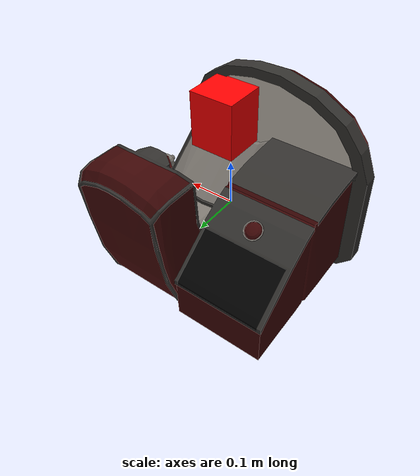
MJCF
<mujoco model="coffee_machine_18">
  <compiler autolimits="true" boundmass="0.01" angle="radian"/>
  <default>
    <default class="/">
      <default class="__VISUAL_MJT__">
        <geom contype="0" conaffinity="0" group="0"/>
      </default>
      <default class="__STRUCTURAL_MJT__">
        <geom contype="8" conaffinity="15" group="4" friction="0.90000000000000002 0.90000000000000002 0.001" solref="0.025000000000000001 1" solimp="0.998 0.998 0.001"/>
      </default>
      <default class="__DYNAMIC_MJT__">
        <geom contype="1" conaffinity="15" group="4" friction="0.90000000000000002 0.90000000000000002 0.001" solref="0.025000000000000001 1" solimp="0.998 0.998 0.001"/>
      </default>
    </default>
  </default>
  <asset>
    <material name="material_coffee_machine_backup_mat" class="/" specular="0.5" shininess="0.5" rgba="0.5 0.5 0.5 1"/>
    <material name="material_Coffee_Machine_Readout_Mat_Off" class="/" specular="0.5" shininess="0.5" rgba="0 0 0 1"/>
    <texture name="Coffee_Machine_Decal_Mat" type="2d" file="Coffee_Machine_Decal_AlbedoTransparency.png"/>
    <material name="material_Coffee_Machine_Decal_Mat" class="/" texture="Coffee_Machine_Decal_Mat" specular="0.5" shininess="0.5" rgba="1 1 1 1"/>
    <texture name="Coffee_Machine_Metal_Mat" type="2d" file="MetalBumpy_AlbedoTransparency.png"/>
    <material name="material_Coffee_Machine_Metal_Mat" class="/" texture="Coffee_Machine_Metal_Mat" specular="0.5" shininess="0.5" rgba="0.66176469999999998 0.66176469999999998 0.66176469999999998 1"/>
    <texture name="Coffee_Machine_Secondary3_Color_Mat" type="2d" file="BrushedIron_AlbedoTransparency.png"/>
    <material name="material_Coffee_Machine_Secondary3_Color_Mat" class="/" texture="Coffee_Machine_Secondary3_Color_Mat" specular="0.5" shininess="0.5" rgba="0.2573529 0.2573529 0.2573529 1"/>
    <texture name="Coffee_Machine_Primary3_Color_Mat" type="2d" file="BumpyPlastic_Albedo.png"/>
    <material name="material_Coffee_Machine_Primary3_Color_Mat" class="/" texture="Coffee_Machine_Primary3_Color_Mat" specular="0.5" shininess="0.5" rgba="0.31617650000000003 0.030222740000000001 0.030222740000000001 1"/>
    <mesh name="coffee_machine_18_coffee_machine_28_0" class="/" file="coffee_machine_18_coffee_machine_28/coffee_machine_18_coffee_machine_28_0.obj" scale="1 1 1"/>
    <mesh name="coffee_machine_18_coffee_machine_28_1" class="/" file="coffee_machine_18_coffee_machine_28/coffee_machine_18_coffee_machine_28_1.obj" scale="1 1 1"/>
    <mesh name="coffee_machine_18_coffee_machine_28_2" class="/" file="coffee_machine_18_coffee_machine_28/coffee_machine_18_coffee_machine_28_2.obj" scale="1 1 1"/>
    <mesh name="coffee_machine_18_coffee_machine_28_3" class="/" file="coffee_machine_18_coffee_machine_28/coffee_machine_18_coffee_machine_28_3.obj" scale="1 1 1"/>
    <mesh name="coffee_machine_18_coffee_machine_28_4" class="/" file="coffee_machine_18_coffee_machine_28/coffee_machine_18_coffee_machine_28_4.obj" scale="1 1 1"/>
    <mesh name="coffee_machine_18_coffee_machine_28_5" class="/" file="coffee_machine_18_coffee_machine_28/coffee_machine_18_coffee_machine_28_5.obj" scale="1 1 1"/>
  </asset>
  <worldbody>
    <body name="coffee_machine_18">
      <joint name="coffee_machine_18_free" class="/" type="free" pos="0 0 0" axis="0 0 1" stiffness="0" range="0 0" armature="0" damping="0.10000000000000001" frictionloss="0"/>
      <body name="coffee_machine_18_coffee_machine_28" pos="0.00073999999999999999 -0.23868999967068433 -0.063189999999999996" quat="1 0 0 0">
        <geom name="coffee_machine_18_coffee_machine_28_0" class="__VISUAL_MJT__" type="mesh" material="material_coffee_machine_backup_mat" shellinertia="true" mesh="coffee_machine_18_coffee_machine_28_0"/>
        <geom name="coffee_machine_18_coffee_machine_28_1" class="__VISUAL_MJT__" type="mesh" material="material_Coffee_Machine_Readout_Mat_Off" shellinertia="false" mesh="coffee_machine_18_coffee_machine_28_1"/>
        <geom name="coffee_machine_18_coffee_machine_28_2" class="__VISUAL_MJT__" type="mesh" material="material_Coffee_Machine_Decal_Mat" shellinertia="true" mesh="coffee_machine_18_coffee_machine_28_2"/>
        <geom name="coffee_machine_18_coffee_machine_28_3" class="__VISUAL_MJT__" type="mesh" material="material_Coffee_Machine_Metal_Mat" shellinertia="false" mesh="coffee_machine_18_coffee_machine_28_3"/>
        <geom name="coffee_machine_18_coffee_machine_28_4" class="__VISUAL_MJT__" type="mesh" material="material_Coffee_Machine_Secondary3_Color_Mat" shellinertia="false" mesh="coffee_machine_18_coffee_machine_28_4"/>
        <geom name="coffee_machine_18_coffee_machine_28_5" class="__VISUAL_MJT__" type="mesh" material="material_Coffee_Machine_Primary3_Color_Mat" shellinertia="false" mesh="coffee_machine_18_coffee_machine_28_5"/>
        <site name="coffee_machine_18_Receptacle_0" class="/" type="box" rgba="1 0 0 1" size="0.054318930953741074 0.053741812705993652 0.067901112139225006" pos="0.10270000249147415 0.11524181067943573 0.17149999737739563" quat="1 0 0 0"/>
        <geom name="coffee_machine_18_PrimitiveCollider_0" class="__DYNAMIC_MJT__" type="box" size="0.10716918110847473 0.20159605145454407 0.14177131652832031" rgba="0 1 0 1" pos="-0.093022376298904419 0.20159605145454407 -0.015325546264648438" quat="1 0 0 0"/>
        <geom name="coffee_machine_18_PrimitiveCollider_1" class="__DYNAMIC_MJT__" type="box" size="0.20854547619819641 0.19927698373794556 0.12951350212097168" rgba="0 1 0 1" pos="0.0083539187908172607 0.19927698373794556 -0.02758336067199707" quat="1 0 0 0"/>
        <geom name="coffee_machine_18_PrimitiveCollider_2" class="__DYNAMIC_MJT__" type="box" size="0.10882568359375 0.072059780359268188 0.1752324104309082" rgba="0 1 0 1" pos="0.10807371139526367 0.37817612290382385 0.045964241027832031" quat="1 0 0 0"/>
        <geom name="coffee_machine_18_PrimitiveCollider_3" class="__DYNAMIC_MJT__" type="box" size="0.22809171676635742 0.030316650867462158 0.21863198280334473" rgba="0 1 0 1" pos="0.0007343292236328125 0.029654026031494141 0.064848184585571289" quat="1 0 0 0"/>
      </body>
    </body>
  </worldbody>
</mujoco>
